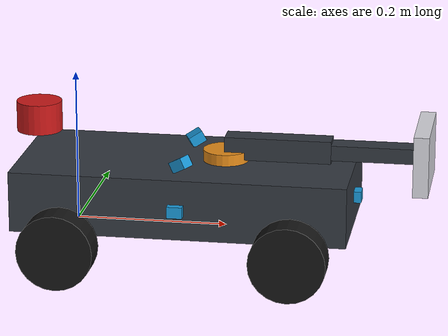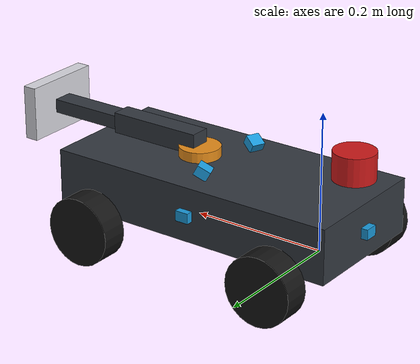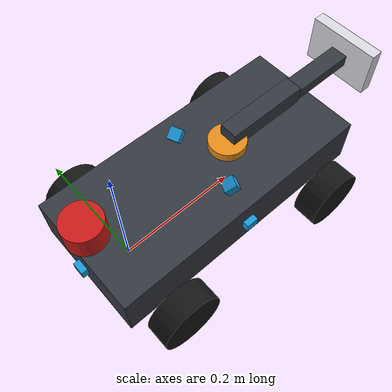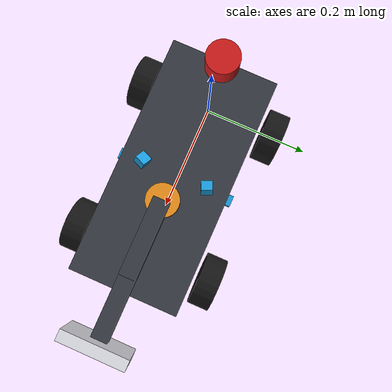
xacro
<?xml version="1.0"?>
<robot name="air26_rover" xmlns:xacro="http://www.ros.org/wiki/xacro">

  <!-- ==================== tunable geometry ==================== -->
  <!-- These three are the ones the Task 2 odometry node reads as parameters.
       If you change them here, change them in air26_bringup params too. -->
  <xacro:property name="wheel_radius" value="0.05"/>
  <xacro:property name="wheelbase"    value="0.30"/>   <!-- front axle x-offset -->
  <xacro:property name="track_width"  value="0.26"/>   <!-- left<->right wheel span -->
  <xacro:property name="wheel_width"  value="0.04"/>
  <xacro:property name="steer_limit"  value="0.6"/>    <!-- max steer angle (rad) -->

  <!-- chassis box -->
  <xacro:property name="chassis_len"  value="0.44"/>
  <xacro:property name="chassis_wid"  value="0.20"/>
  <xacro:property name="chassis_hgt"  value="0.08"/>
  <xacro:property name="chassis_cx"   value="${wheelbase/2.0}"/>  <!-- center between axles -->
  <xacro:property name="chassis_cz"   value="0.05"/>              <!-- above axle height -->

  <!-- ==================== includes ==================== -->
  <xacro:include filename="$(find air26_description)/urdf/common.xacro"/>
  <xacro:include filename="$(find air26_description)/urdf/wheels.xacro"/>
  <xacro:include filename="$(find air26_description)/urdf/arm.xacro"/>
  <xacro:include filename="$(find air26_description)/urdf/sensors.xacro"/>

  <!-- ==================== chassis (base_link) ==================== -->
  <link name="base_link">
    <xacro:box_inertial mass="3.0" x="${chassis_len}" y="${chassis_wid}" z="${chassis_hgt}">
      <origin xyz="${chassis_cx} 0 ${chassis_cz}"/>
    </xacro:box_inertial>
    <visual>
      <origin xyz="${chassis_cx} 0 ${chassis_cz}"/>
      <geometry><box size="${chassis_len} ${chassis_wid} ${chassis_hgt}"/></geometry>
      <material name="a26_body"/>
    </visual>
    <collision>
      <origin xyz="${chassis_cx} 0 ${chassis_cz}"/>
      <geometry><box size="${chassis_len} ${chassis_wid} ${chassis_hgt}"/></geometry>
    </collision>
  </link>

  <!-- ==================== running gear ==================== -->
  <!-- front axle: two steering wheels -->
  <xacro:steered_wheel prefix="front_left"  x="${wheelbase}" y="${ track_width/2.0}"
                       wheel_radius="${wheel_radius}" wheel_width="${wheel_width}" steer_limit="${steer_limit}"/>
  <xacro:steered_wheel prefix="front_right" x="${wheelbase}" y="${-track_width/2.0}"
                       wheel_radius="${wheel_radius}" wheel_width="${wheel_width}" steer_limit="${steer_limit}"/>
  <!-- rear axle: two driven wheels (no differential; driver spins both equally) -->
  <xacro:fixed_wheel prefix="rear_left"  x="0" y="${ track_width/2.0}"
                     wheel_radius="${wheel_radius}" wheel_width="${wheel_width}"/>
  <xacro:fixed_wheel prefix="rear_right" x="0" y="${-track_width/2.0}"
                     wheel_radius="${wheel_radius}" wheel_width="${wheel_width}"/>

  <!-- ==================== arm ==================== -->
  <xacro:clearing_arm parent="base_link" x="${chassis_cx + 0.05}" y="0" z="${chassis_cz + chassis_hgt/2.0}"/>

  <!-- ==================== sensors ==================== -->
  <!-- rear lidar, up on the tail -->
  <xacro:rear_lidar parent="base_link" x="-0.05" y="0" z="${chassis_cz + chassis_hgt/2.0 + 0.05}"/>

  <!-- ultrasonic range ring (8): front trio, sides, rear, and two up-angled canopy -->
  <xacro:property name="front_x" value="${chassis_cx + chassis_len/2.0}"/>
  <xacro:property name="rear_x"  value="${chassis_cx - chassis_len/2.0}"/>
  <xacro:property name="side_y"  value="${chassis_wid/2.0}"/>
  <xacro:property name="sens_z"  value="${chassis_cz}"/>

  <xacro:range_sensor name="front_center" parent="base_link" x="${front_x}"      y="0"          z="${sens_z}" roll="0" pitch="0"     yaw="0"/>
  <xacro:range_sensor name="front_left"   parent="base_link" x="${front_x-0.02}" y="${ 0.08}"   z="${sens_z}" roll="0" pitch="0"     yaw="0.5"/>
  <xacro:range_sensor name="front_right"  parent="base_link" x="${front_x-0.02}" y="${-0.08}"   z="${sens_z}" roll="0" pitch="0"     yaw="-0.5"/>
  <xacro:range_sensor name="left"         parent="base_link" x="${chassis_cx}"   y="${ side_y}" z="${sens_z}" roll="0" pitch="0"     yaw="${ pi/2}"/>
  <xacro:range_sensor name="right"        parent="base_link" x="${chassis_cx}"   y="${-side_y}" z="${sens_z}" roll="0" pitch="0"     yaw="${-pi/2}"/>
  <xacro:range_sensor name="rear"         parent="base_link" x="${rear_x}"       y="0"          z="${sens_z}" roll="0" pitch="0"     yaw="${pi}"/>
  <xacro:range_sensor name="canopy_left"  parent="base_link" x="${chassis_cx}"   y="${ 0.06}"   z="${sens_z+0.05}" roll="0" pitch="-0.5" yaw="0.4"/>
  <xacro:range_sensor name="canopy_right" parent="base_link" x="${chassis_cx}"   y="${-0.06}"   z="${sens_z+0.05}" roll="0" pitch="-0.5" yaw="-0.4"/>

  <!-- ## student additions go here  (Task 1)                              -->
  <!-- Add a link/joint/sensor of your own below. Attach it to base_link   -->
  <!-- (or any existing link), give it a new frame id, then check it with  -->
  <!-- `check_urdf` and confirm the frame appears in RViz / view_frames.   -->

</robot>

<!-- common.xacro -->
<!--
  common.xacro — shared materials and inertial-macro helpers.
  Nothing robot-specific lives here; it is included by air26_robot.urdf.xacro.
-->
<robot xmlns:xacro="http://www.ros.org/wiki/xacro">

  <!-- ============================ materials ============================ -->
  <material name="a26_body">   <color rgba="0.20 0.22 0.25 1.0"/> </material>
  <material name="a26_accent"> <color rgba="0.90 0.55 0.10 1.0"/> </material>
  <material name="a26_wheel">  <color rgba="0.08 0.08 0.08 1.0"/> </material>
  <material name="a26_sensor"> <color rgba="0.10 0.60 0.85 1.0"/> </material>
  <material name="a26_lidar">  <color rgba="0.80 0.10 0.10 1.0"/> </material>
  <material name="a26_paddle"> <color rgba="0.85 0.85 0.88 1.0"/> </material>

  <!-- ======================= inertial helpers ========================= -->
  <!-- Solid box inertia about its center of mass. -->
  <xacro:macro name="box_inertial" params="mass x y z *origin">
    <inertial>
      <xacro:insert_block name="origin"/>
      <mass value="${mass}"/>
      <inertia
        ixx="${mass/12.0 * (y*y + z*z)}" ixy="0.0" ixz="0.0"
        iyy="${mass/12.0 * (x*x + z*z)}" iyz="0.0"
        izz="${mass/12.0 * (x*x + y*y)}"/>
    </inertial>
  </xacro:macro>

  <!-- Solid cylinder inertia, symmetry axis along local Z. -->
  <xacro:macro name="cylinder_inertial" params="mass radius length *origin">
    <inertial>
      <xacro:insert_block name="origin"/>
      <mass value="${mass}"/>
      <inertia
        ixx="${mass/12.0 * (3*radius*radius + length*length)}" ixy="0.0" ixz="0.0"
        iyy="${mass/12.0 * (3*radius*radius + length*length)}" iyz="0.0"
        izz="${mass/2.0 * radius*radius}"/>
    </inertial>
  </xacro:macro>

</robot>

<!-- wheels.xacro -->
<robot xmlns:xacro="http://www.ros.org/wiki/xacro">

  <!-- A front wheel: chassis -> steer knuckle -> wheel. -->
  <xacro:macro name="steered_wheel" params="prefix x y wheel_radius wheel_width steer_limit">
    <!-- steering knuckle -->
    <link name="${prefix}_steer_link">
      <xacro:box_inertial mass="0.15" x="0.03" y="0.03" z="0.05">
        <origin xyz="0 0 0"/>
      </xacro:box_inertial>
      <visual>
        <geometry><box size="0.03 0.03 0.05"/></geometry>
        <material name="a26_accent"/>
      </visual>
    </link>
    <joint name="${prefix}_steer_joint" type="revolute">
      <parent link="base_link"/>
      <child link="${prefix}_steer_link"/>
      <origin xyz="${x} ${y} 0" rpy="0 0 0"/>
      <axis xyz="0 0 1"/>
      <limit lower="${-steer_limit}" upper="${steer_limit}" effort="10.0" velocity="4.0"/>
    </joint>

    <!-- rolling wheel -->
    <link name="${prefix}_wheel_link">
      <xacro:cylinder_inertial mass="0.30" radius="${wheel_radius}" length="${wheel_width}">
        <origin xyz="0 0 0" rpy="${pi/2} 0 0"/>
      </xacro:cylinder_inertial>
      <visual>
        <origin xyz="0 0 0" rpy="${pi/2} 0 0"/>
        <geometry><cylinder radius="${wheel_radius}" length="${wheel_width}"/></geometry>
        <material name="a26_wheel"/>
      </visual>
      <collision>
        <origin xyz="0 0 0" rpy="${pi/2} 0 0"/>
        <geometry><cylinder radius="${wheel_radius}" length="${wheel_width}"/></geometry>
      </collision>
    </link>
    <joint name="${prefix}_wheel_joint" type="continuous">
      <parent link="${prefix}_steer_link"/>
      <child link="${prefix}_wheel_link"/>
      <origin xyz="0 0 0" rpy="0 0 0"/>
      <axis xyz="0 1 0"/>
    </joint>
  </xacro:macro>

  <!-- A rear wheel: rigidly mounted to the chassis, driven. -->
  <xacro:macro name="fixed_wheel" params="prefix x y wheel_radius wheel_width">
    <link name="${prefix}_wheel_link">
      <xacro:cylinder_inertial mass="0.30" radius="${wheel_radius}" length="${wheel_width}">
        <origin xyz="0 0 0" rpy="${pi/2} 0 0"/>
      </xacro:cylinder_inertial>
      <visual>
        <origin xyz="0 0 0" rpy="${pi/2} 0 0"/>
        <geometry><cylinder radius="${wheel_radius}" length="${wheel_width}"/></geometry>
        <material name="a26_wheel"/>
      </visual>
      <collision>
        <origin xyz="0 0 0" rpy="${pi/2} 0 0"/>
        <geometry><cylinder radius="${wheel_radius}" length="${wheel_width}"/></geometry>
      </collision>
    </link>
    <joint name="${prefix}_wheel_joint" type="continuous">
      <parent link="base_link"/>
      <child link="${prefix}_wheel_link"/>
      <origin xyz="${x} ${y} 0" rpy="0 0 0"/>
      <axis xyz="0 1 0"/>
    </joint>
  </xacro:macro>

</robot>

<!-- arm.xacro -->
<robot xmlns:xacro="http://www.ros.org/wiki/xacro">

  <xacro:macro name="clearing_arm" params="parent x y z">

    <!-- yaw turret -->
    <link name="arm_base_link">
      <xacro:cylinder_inertial mass="0.10" radius="0.03" length="0.03">
        <origin xyz="0 0 0"/>
      </xacro:cylinder_inertial>
      <visual>
        <geometry><cylinder radius="0.03" length="0.03"/></geometry>
        <material name="a26_accent"/>
      </visual>
    </link>
    <joint name="arm_yaw_joint" type="revolute">
      <parent link="${parent}"/>
      <child link="arm_base_link"/>
      <origin xyz="${x} ${y} ${z}" rpy="0 0 0"/>
      <axis xyz="0 0 1"/>
      <limit lower="-1.57" upper="1.57" effort="8.0" velocity="3.0"/>
    </joint>

    <!-- upper arm -->
    <link name="arm_upper_link">
      <xacro:box_inertial mass="0.08" x="0.14" y="0.03" z="0.03">
        <origin xyz="0.07 0 0"/>
      </xacro:box_inertial>
      <visual>
        <origin xyz="0.07 0 0"/>
        <geometry><box size="0.14 0.03 0.03"/></geometry>
        <material name="a26_body"/>
      </visual>
    </link>
    <joint name="arm_shoulder_joint" type="revolute">
      <parent link="arm_base_link"/>
      <child link="arm_upper_link"/>
      <origin xyz="0 0 0.02" rpy="0 0 0"/>
      <axis xyz="0 1 0"/>
      <limit lower="-1.2" upper="1.2" effort="8.0" velocity="3.0"/>
    </joint>

    <!-- forearm -->
    <link name="arm_fore_link">
      <xacro:box_inertial mass="0.06" x="0.12" y="0.03" z="0.02">
        <origin xyz="0.06 0 0"/>
      </xacro:box_inertial>
      <visual>
        <origin xyz="0.06 0 0"/>
        <geometry><box size="0.12 0.03 0.02"/></geometry>
        <material name="a26_body"/>
      </visual>
    </link>
    <joint name="arm_elbow_joint" type="revolute">
      <parent link="arm_upper_link"/>
      <child link="arm_fore_link"/>
      <origin xyz="0.14 0 0" rpy="0 0 0"/>
      <axis xyz="0 1 0"/>
      <limit lower="-1.5" upper="1.5" effort="6.0" velocity="3.0"/>
    </joint>

    <!-- flat swiper paddle (fixed to the forearm tip) -->
    <link name="paddle_link">
      <xacro:box_inertial mass="0.05" x="0.02" y="0.12" z="0.08">
        <origin xyz="0 0 0"/>
      </xacro:box_inertial>
      <visual>
        <geometry><box size="0.02 0.12 0.08"/></geometry>
        <material name="a26_paddle"/>
      </visual>
      <collision>
        <geometry><box size="0.02 0.12 0.08"/></geometry>
      </collision>
    </link>
    <joint name="paddle_joint" type="fixed">
      <parent link="arm_fore_link"/>
      <child link="paddle_link"/>
      <origin xyz="0.12 0 0" rpy="0 0 0"/>
    </joint>

  </xacro:macro>

</robot>

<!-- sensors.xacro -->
<robot xmlns:xacro="http://www.ros.org/wiki/xacro">

  <xacro:macro name="range_sensor" params="name parent x y z roll pitch yaw">
    <link name="${name}_range_link">
      <xacro:box_inertial mass="0.01" x="0.02" y="0.02" z="0.015">
        <origin xyz="0 0 0"/>
      </xacro:box_inertial>
      <visual>
        <geometry><box size="0.02 0.02 0.015"/></geometry>
        <material name="a26_sensor"/>
      </visual>
    </link>
    <joint name="${name}_range_joint" type="fixed">
      <parent link="${parent}"/>
      <child link="${name}_range_link"/>
      <origin xyz="${x} ${y} ${z}" rpy="${roll} ${pitch} ${yaw}"/>
    </joint>
  </xacro:macro>

  <!-- Rear-mounted 2D lidar. -->
  <xacro:macro name="rear_lidar" params="parent x y z">
    <link name="lidar_link">
      <xacro:cylinder_inertial mass="0.08" radius="0.03" length="0.04">
        <origin xyz="0 0 0"/>
      </xacro:cylinder_inertial>
      <visual>
        <geometry><cylinder radius="0.03" length="0.04"/></geometry>
        <material name="a26_lidar"/>
      </visual>
      <collision>
        <geometry><cylinder radius="0.03" length="0.04"/></geometry>
      </collision>
    </link>
    <!-- rpy z=pi so the lidar's +x (0-angle ray) points to the rover's rear -->
    <joint name="lidar_joint" type="fixed">
      <parent link="${parent}"/>
      <child link="lidar_link"/>
      <origin xyz="${x} ${y} ${z}" rpy="0 0 ${pi}"/>
    </joint>
  </xacro:macro>

</robot>
